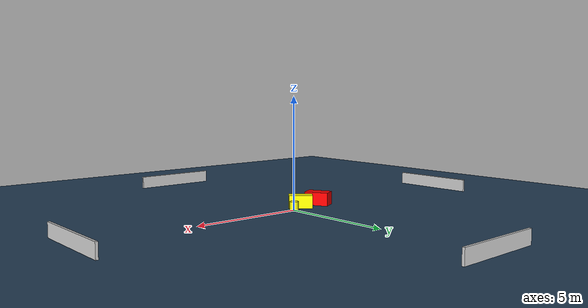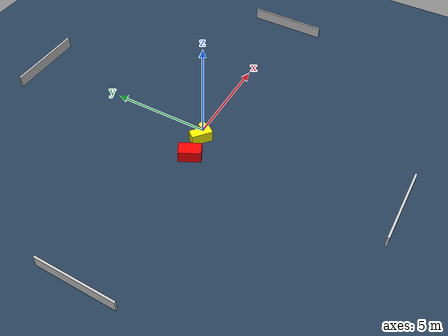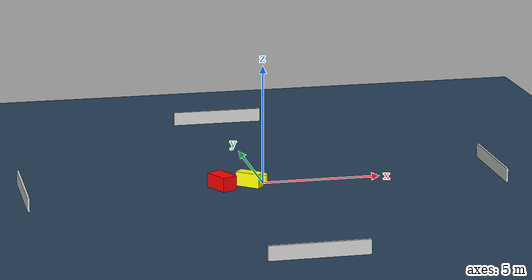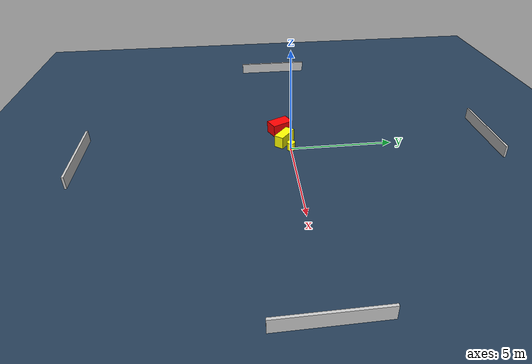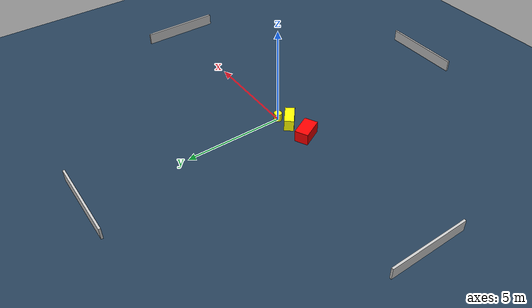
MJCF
<?xml version="1.0" ?>
<mujoco model="generated_environment">
  <option timestep="0.01" integrator="RK4" cone="elliptic"/>
  <default>
    <geom density="1"/>
  </default>
  <asset>
    <texture builtin="gradient" height="3072" name="skybox" rgb1="0.3 0.5 0.7" rgb2="0 0 0" type="skybox" width="512"/>
    <texture builtin="checker" height="300" name="groundplane" rgb1="0.2 0.3 0.4" rgb2="0.1 0.2 0.3" type="2d" width="300"/>
    <material name="groundplane" reflectance="0.2" texrepeat="5 5" texture="groundplane"/>
  </asset>
  <worldbody>
    <light dir="0 0 -1" directional="true" pos="0 0 1.5"/>
    <geom condim="3" friction="0.5 0.005 0.001" material="groundplane" name="floor" pos="0 0 0" size="0 0 0.05" type="plane"/>
    <body name="walls">
      <geom name="wall_1" condim="4" pos="-10.0 0.0 0.3" rgba="0.800000011920929 0.800000011920929 0.800000011920929 1.0" size="0.05 2.0 0.3" type="box"/>
      <geom name="wall_2" condim="4" pos="10.0 0.0 0.3" rgba="0.800000011920929 0.800000011920929 0.800000011920929 1.0" size="0.05 2.0 0.3" type="box"/>
      <geom name="wall_3" condim="4" pos="0.0 -10.0 0.3" rgba="0.800000011920929 0.800000011920929 0.800000011920929 1.0" size="2.0 0.05 0.3" type="box"/>
      <geom name="wall_4" condim="4" pos="0.0 10.0 0.3" rgba="0.800000011920929 0.800000011920929 0.800000011920929 1.0" size="2.0 0.05 0.3" type="box"/>
    </body>
    <body name="robot">
      <joint name="joint_x" type="slide" pos="0 0 0" axis="1 0 0"/>
      <joint name="joint_y" type="slide" pos="0 0 0" axis="0 1 0"/>
      <geom name="robot" type="cylinder" pos="0.0 0.0 0.2" size="0.2 0.2 0.0" mass="5.0" friction="1.0 0.005 0.0001" condim="4" rgba="1.0 1.0 0.0 1.0"/>
    </body>
    <body name="obstacle_1_movable">
      <geom name="obstacle_1_movable" condim="4" pos="-0.6141285938992946 -0.2525599469392509 0.3" euler="0 0 140.69970597410207" friction="0.0 0.005 0.001" rgba="1.0 1.0 0.0 1.0" size="0.5285096210769835 0.23992226780152837 0.3" type="box" mass="0.1"/>
      <joint type="free"/>
    </body>
    <body name="obstacle_2_static">
      <geom name="obstacle_2_static" condim="4" pos="-1.812450528124174 -0.35880031689456304 0.3" euler="0 0 207.0025021983241" friction="0.0 0.005 0.001" rgba="1.0 0.0 0.0 1.0" size="0.3386211914021062 0.5526464766042567 0.3" type="box"/>
    </body>
  </worldbody>
  <actuator>
    <motor name="actuator_x" joint="joint_x" gear="1" ctrlrange="-1 1"/>
    <motor name="actuator_y" joint="joint_y" gear="1" ctrlrange="-1 1"/>
  </actuator>
</mujoco>
